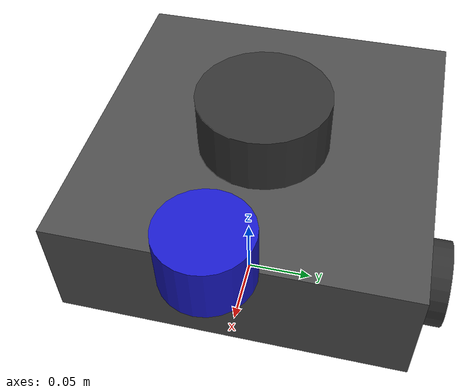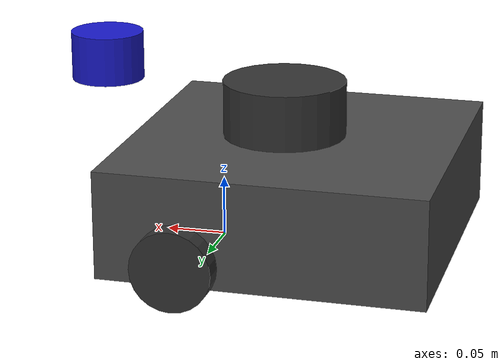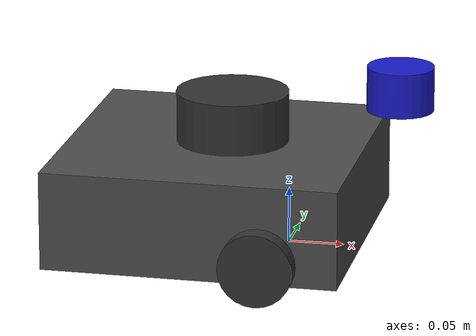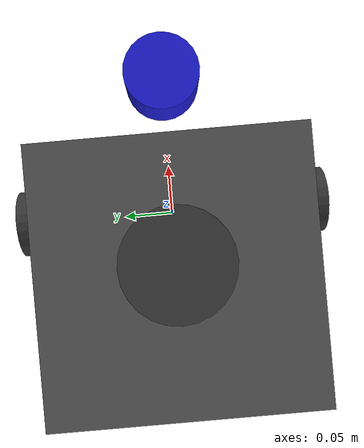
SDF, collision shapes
<?xml version="1.0" ?>
<sdf version="1.5">
  <model name="turtlebot3_waffle_pi">
  <pose>0.0 0.0 0.0 0.0 0.0 0.0</pose>

    <link name="base_footprint"/>

    <link name="base_link">

      <inertial>
        <pose>-0.064 0 0.048 0 0 0</pose>
        <inertia>
          <ixx>4.2111447e-02</ixx>
          <ixy>0</ixy>
          <ixz>0</ixz>
          <iyy>4.2111447e-02</iyy>
          <iyz>0</iyz>
          <izz>7.5254874e-02</izz>
        </inertia>
        <mass>1.3729096e+00</mass>
      </inertial>

      <collision name="base_collision">
        <pose>-0.064 0 0.048 0 0 0</pose>
        <geometry>
          <box>
            <size>0.265 0.265 0.089</size>
          </box>
        </geometry>
      </collision>

      <visual name="base_visual">
        <pose>-0.064 0 0 0 0 0</pose>
        <geometry>
          <mesh>
            <uri>model://turtlebot3_common/meshes/bases/waffle_pi_base.stl</uri>
            <scale>0.001 0.001 0.001</scale>
          </mesh>
        </geometry>
        <material>
          <ambient>0.3 0.3 0.3 1.0</ambient>
          <diffuse>0.3 0.3 0.3 1.0</diffuse>
        </material>
      </visual>
    </link>

    <link name="imu_link">
      <sensor name="tb3_imu" type="imu">
        <always_on>true</always_on>
        <update_rate>100</update_rate>
        <imu>
          <angular_velocity>
            <x>
              <noise type="gaussian">
                <mean>0.0</mean>
                <stddev>2e-4</stddev>
              </noise>
            </x>
            <y>
              <noise type="gaussian">
                <mean>0.0</mean>
                <stddev>2e-4</stddev>
              </noise>
            </y>
            <z>
              <noise type="gaussian">
                <mean>0.0</mean>
                <stddev>2e-4</stddev>
              </noise>
            </z>
          </angular_velocity>
          <linear_acceleration>
            <x>
              <noise type="gaussian">
                <mean>0.0</mean>
                <stddev>1.7e-2</stddev>
              </noise>
            </x>
            <y>
              <noise type="gaussian">
                <mean>0.0</mean>
                <stddev>1.7e-2</stddev>
              </noise>
            </y>
            <z>
              <noise type="gaussian">
                <mean>0.0</mean>
                <stddev>1.7e-2</stddev>
              </noise>
            </z>
          </linear_acceleration>
        </imu>
        <plugin name="turtlebot3_imu" filename="libgazebo_ros_imu_sensor.so">
          <ros>
            <remapping>~/out:=imu</remapping>
          </ros>
        </plugin>
      </sensor>
    </link>

    <link name="base_scan">
      <inertial>
        <pose>-0.052 0 0.111 0 0 0</pose>
        <inertia>
          <ixx>0.001</ixx>
          <ixy>0.000</ixy>
          <ixz>0.000</ixz>
          <iyy>0.001</iyy>
          <iyz>0.000</iyz>
          <izz>0.001</izz>
        </inertia>
        <mass>0.114</mass>
      </inertial>

      <collision name="lidar_sensor_collision">
        <pose>-0.052 0 0.111 0 0 0</pose>
        <geometry>
          <cylinder>
            <radius>0.0508</radius>
            <length>0.055</length>
          </cylinder>
        </geometry>
      </collision>

      <visual name="lidar_sensor_visual">
        <pose>-0.064 0 0.121 0 0 0</pose>
        <geometry>
          <mesh>
            <uri>model://turtlebot3_common/meshes/sensors/lds.stl</uri>
            <scale>0.001 0.001 0.001</scale>
          </mesh>
        </geometry>
        <material>
          <ambient>0.2 0.2 0.2 1.0</ambient>
          <diffuse>0.2 0.2 0.2 1.0</diffuse>
        </material>
      </visual>
    </link>

    <!-- Front LiDAR Link - 360x90, 朝前 -->
    <link name="front_lidar_link">
      <inertial>
        <pose>0.1 0 0.15 0 0 0</pose>
        <inertia>
          <ixx>0.0001</ixx>
          <ixy>0.0</ixy>
          <ixz>0.0</ixz>
          <iyy>0.0001</iyy>
          <iyz>0.0</iyz>
          <izz>0.0001</izz>
        </inertia>
        <mass>0.05</mass>
      </inertial>

      <collision name="front_lidar_collision">
        <pose>0.1 0 0.15 0 0 0</pose>
        <geometry>
          <cylinder>
            <radius>0.03</radius>
            <length>0.04</length>
          </cylinder>
        </geometry>
      </collision>

      <visual name="front_lidar_visual">
        <pose>0.1 0 0.15 0 0 0</pose>
        <geometry>
          <cylinder>
            <radius>0.03</radius>
            <length>0.04</length>
          </cylinder>
        </geometry>
        <material>
          <ambient>0.1 0.1 0.8 1.0</ambient>
          <diffuse>0.1 0.1 0.8 1.0</diffuse>
        </material>
      </visual>

      <sensor name="front_lidar" type="ray">
        <always_on>true</always_on>
        <visualize>false</visualize>
        <pose>0.1 0 0.15 0 -1.5708 0</pose>
        <update_rate>10</update_rate>
        <ray>
          <scan>
            <horizontal>
              <samples>360</samples>
              <resolution>1.0</resolution>
              <min_angle>-3.14159</min_angle>
              <max_angle>3.14159</max_angle>
            </horizontal>
            <vertical>
              <samples>32</samples>
              <min_angle>-1.57</min_angle>
              <max_angle>1.57</max_angle>
            </vertical>
          </scan>
          <range>
            <min>0.1</min>
            <max>30.0</max>
            <resolution>0.01</resolution>
          </range>
          <noise>
            <type>gaussian</type>
            <mean>0.0</mean>
            <stddev>0.001</stddev>
          </noise>
        </ray>
        <plugin name="front_lidar_plugin" filename="libgazebo_ros_ray_sensor.so">
          <ros>
            <remapping>~/out:=front_lidar</remapping>
          </ros>
          <output_type>sensor_msgs/PointCloud2</output_type>
          <frame_name>front_lidar_link</frame_name>
        </plugin>
      </sensor>
    </link>

    <!-- Back LiDAR Link - 360x90, 朝后 -->

    <link name="wheel_left_link">

      <inertial>
        <pose>0.0 0.144 0.023 -1.57 0 0</pose>
        <inertia>
          <ixx>1.8158194e-03</ixx>
          <ixy>-9.3392e-12</ixy>
          <ixz>1.04909e-11</ixz>
          <iyy>3.2922126e-03</iyy>
          <iyz>5.75694e-11</iyz>
          <izz>1.8158194e-03</izz>
        </inertia>
        <mass>2.8498940e-02</mass>
      </inertial>

      <collision name="wheel_left_collision">
        <pose>0.0 0.144 0.023 -1.57 0 0</pose>
        <geometry>
          <cylinder>
            <radius>0.033</radius>
            <length>0.018</length>
          </cylinder>
        </geometry>
        <surface>
          <!-- This friction pamareter don't contain reliable data!! -->
          <friction>
            <ode>
              <mu>100000</mu>
              <mu2>100000</mu2>
              <fdir1>0 0 0</fdir1>
              <slip1>0.0</slip1>
              <slip2>0.0</slip2>
            </ode>
          </friction>
          <contact>
            <ode>
              <soft_cfm>0</soft_cfm>
              <soft_erp>0.2</soft_erp>
              <kp>1e+5</kp>
              <kd>1</kd>
              <max_vel>0.01</max_vel>
              <min_depth>0.001</min_depth>
            </ode>
          </contact>
        </surface>
      </collision>

      <visual name="wheel_left_visual">
        <pose>0.0 0.144 0.023 0 0 0</pose>
        <geometry>
          <mesh>
            <uri>model://turtlebot3_common/meshes/wheels/right_tire.stl</uri>
            <scale>0.001 0.001 0.001</scale>
          </mesh>
        </geometry>
        <material>
          <ambient>0.2 0.2 0.2 1.0</ambient>
          <diffuse>0.2 0.2 0.2 1.0</diffuse>
        </material>
      </visual>
    </link>

    <link name="wheel_right_link">

      <inertial>
        <pose>0.0 -0.144 0.023 -1.57 0 0</pose>
        <inertia>
          <ixx>1.8158194e-03</ixx>
          <ixy>-9.3392e-12</ixy>
          <ixz>1.04909e-11</ixz>
          <iyy>3.2922126e-03</iyy>
          <iyz>5.75694e-11</iyz>
          <izz>1.8158194e-03</izz>
        </inertia>
        <mass>2.8498940e-02</mass>
      </inertial>

      <collision name="wheel_right_collision">
        <pose>0.0 -0.144 0.023 -1.57 0 0</pose>
        <geometry>
          <cylinder>
            <radius>0.033</radius>
            <length>0.018</length>
          </cylinder>
        </geometry>
        <surface>
          <!-- This friction pamareter don't contain reliable data!! -->
          <friction>
            <ode>
              <mu>100000</mu>
              <mu2>100000</mu2>
              <fdir1>0 0 0</fdir1>
              <slip1>0.0</slip1>
              <slip2>0.0</slip2>
            </ode>
          </friction>
          <contact>
            <ode>
              <soft_cfm>0</soft_cfm>
              <soft_erp>0.2</soft_erp>
              <kp>1e+5</kp>
              <kd>1</kd>
              <max_vel>0.01</max_vel>
              <min_depth>0.001</min_depth>
            </ode>
          </contact>
        </surface>
      </collision>

      <visual name="wheel_right_visual">
        <pose>0.0 -0.144 0.023 0 0 0</pose>
        <geometry>
          <mesh>
            <uri>model://turtlebot3_common/meshes/wheels/left_tire.stl</uri>
            <scale>0.001 0.001 0.001</scale>
          </mesh>
        </geometry>
        <material>
          <ambient>0.2 0.2 0.2 1.0</ambient>
          <diffuse>0.2 0.2 0.2 1.0</diffuse>
        </material>
      </visual>
    </link>

    <link name='caster_back_right_link'>
      <pose>-0.177 -0.064 -0.004 -1.57 0 0</pose>
      <inertial>
        <mass>0.001</mass>
        <inertia>
          <ixx>0.00001</ixx>
          <ixy>0.000</ixy>
          <ixz>0.000</ixz>
          <iyy>0.00001</iyy>
          <iyz>0.000</iyz>
          <izz>0.00001</izz>
        </inertia>
      </inertial>
      <collision name='collision'>
        <geometry>
          <sphere>
            <radius>0.005000</radius>
          </sphere>
        </geometry>
        <surface>
          <contact>
            <ode>
              <soft_cfm>0</soft_cfm>
              <soft_erp>0.2</soft_erp>
              <kp>1e+5</kp>
              <kd>1</kd>
              <max_vel>0.01</max_vel>
              <min_depth>0.001</min_depth>
            </ode>
          </contact>
        </surface>
      </collision>
    </link>

    <link name='caster_back_left_link'>
      <pose>-0.177 0.064 -0.004 -1.57 0 0</pose>
      <inertial>
        <mass>0.001</mass>
        <inertia>
          <ixx>0.00001</ixx>
          <ixy>0.000</ixy>
          <ixz>0.000</ixz>
          <iyy>0.00001</iyy>
          <iyz>0.000</iyz>
          <izz>0.00001</izz>
        </inertia>
      </inertial>
      <collision name='collision'>
        <geometry>
          <sphere>
            <radius>0.005000</radius>
          </sphere>
        </geometry>
        <surface>
          <contact>
            <ode>
              <soft_cfm>0</soft_cfm>
              <soft_erp>0.2</soft_erp>
              <kp>1e+5</kp>
              <kd>1</kd>
              <max_vel>0.01</max_vel>
              <min_depth>0.001</min_depth>
            </ode>
          </contact>
        </surface>
      </collision>
    </link>

    <link name="camera_link"/>

    <link name="camera_rgb_optical_frame">
      <inertial>
        <pose>0.076 0.0 0.293 0 0 0</pose>
        <inertia>
          <ixx>0.001</ixx>
          <ixy>0.000</ixy>
          <ixz>0.000</ixz>
          <iyy>0.001</iyy>
          <iyz>0.000</iyz>
          <izz>0.001</izz>
        </inertia>
        <mass>0.035</mass>
      </inertial>

      <pose>0.076 0.0 0.293 0 0 0</pose>
      <sensor name="camera" type="depth">
        <always_on>true</always_on>
        <visualize>true</visualize>
        <update_rate>15</update_rate>
        <camera name="intel_realsense_d455">
          <horizontal_fov>1.9188</horizontal_fov>
          <vertical_fov>1.395</vertical_fov>
          <image>
            <width>640</width>
            <height>480</height>
            <format>R8G8B8</format>
          </image>
          <clip>
            <near>0.02</near>
            <far>300</far>
          </clip>
          <noise>
            <type>gaussian</type>
            <mean>0.0</mean>
            <stddev>0.007</stddev>
          </noise>
        </camera>
        <plugin name="rgbd_plugin" filename="libgazebo_ros_camera.so">
          <ros>
            <argument>/camera/depth/image_raw:=camera/depth/image_rect_raw</argument>
            <argument>/camera/points:=/camera/depth/color/points</argument>
          </ros>

          <!-- Set camera name. If empty, defaults to sensor name (i.e. "sensor_name") -->
          <camera_name>camera</camera_name>

          <!-- Set TF frame name. If empty, defaults to link name (i.e. "link_name") -->
          <frame_name>camera_depth_optical_frame</frame_name>

          <hack_baseline>0.07</hack_baseline>

          <!-- No need to repeat distortion parameters or to set autoDistortion -->

          <min_depth>0.001</min_depth>
        </plugin>
      </sensor>
    </link>

    <!-- ============ Front downward depth camera (face front, pitch down 45 deg) ============ -->
    <link name="camera_front_link">
      <inertial>
        <pose>0.08 0.0 0.3 0 0.61 0</pose>
        <inertia>
          <ixx>0.001</ixx>
          <ixy>0.000</ixy>
          <ixz>0.000</ixz>
          <iyy>0.001</iyy>
          <iyz>0.000</iyz>
          <izz>0.001</izz>
        </inertia>
        <mass>0.035</mass>
      </inertial>

      <!-- pose relative to base_link: face +X (front), pitched 45deg downward -->
      <pose>0.08 0.0 0.3 0 0.61 0</pose>
      <sensor name="camera_front" type="depth">
        <always_on>true</always_on>
        <visualize>false</visualize>
        <update_rate>15</update_rate>
        <camera name="intel_realsense_d455_front">
          <horizontal_fov>1.9188</horizontal_fov>
          <vertical_fov>1.395</vertical_fov>
          <image>
            <width>640</width>
            <height>480</height>
            <format>R8G8B8</format>
          </image>
          <clip>
            <near>0.02</near>
            <far>300</far>
          </clip>
          <noise>
            <type>gaussian</type>
            <mean>0.0</mean>
            <stddev>0.007</stddev>
          </noise>
        </camera>
        <plugin name="rgbd_plugin_front" filename="libgazebo_ros_camera.so">
          <ros>
            <argument>/camera_front/depth/image_raw:=camera_front/depth/image_rect_raw</argument>
            <argument>/camera_front/points:=/camera_front/depth/color/points</argument>
          </ros>
          <camera_name>camera_front</camera_name>
          <frame_name>camera_front_depth_optical_frame</frame_name>
          <hack_baseline>0.07</hack_baseline>
          <min_depth>0.001</min_depth>
        </plugin>
      </sensor>
    </link>

    <!-- ============ Left downward depth camera (face left +Y, pitch down 45 deg) ============ -->
    <link name="camera_left_link">
      <inertial>
        <pose>0.08 0.10 0.3 0 0.785398 1.5708</pose>
        <inertia>
          <ixx>0.001</ixx>
          <ixy>0.000</ixy>
          <ixz>0.000</ixz>
          <iyy>0.001</iyy>
          <iyz>0.000</iyz>
          <izz>0.001</izz>
        </inertia>
        <mass>0.035</mass>
      </inertial>

      <!-- pose relative to base_link: face +Y (left), pitched 45deg downward -->
      <pose>0.08 0.10 0.3 0 0.785398 1.5708</pose>
      <sensor name="camera_left" type="depth">
        <always_on>true</always_on>
        <visualize>false</visualize>
        <update_rate>15</update_rate>
        <camera name="intel_realsense_d455_left">
          <horizontal_fov>1.9188</horizontal_fov>
          <vertical_fov>1.395</vertical_fov>
          <image>
            <width>640</width>
            <height>480</height>
            <format>R8G8B8</format>
          </image>
          <clip>
            <near>0.02</near>
            <far>300</far>
          </clip>
          <noise>
            <type>gaussian</type>
            <mean>0.0</mean>
            <stddev>0.007</stddev>
          </noise>
        </camera>
        <plugin name="rgbd_plugin_left" filename="libgazebo_ros_camera.so">
          <ros>
            <argument>/camera_left/depth/image_raw:=camera_left/depth/image_rect_raw</argument>
            <argument>/camera_left/points:=/camera_left/depth/color/points</argument>
          </ros>
          <camera_name>camera_left</camera_name>
          <frame_name>camera_left_depth_optical_frame</frame_name>
          <hack_baseline>0.07</hack_baseline>
          <min_depth>0.001</min_depth>
        </plugin>
      </sensor>
    </link>

    <!-- ============ Right downward depth camera (face right -Y, pitch down 45 deg) ============ -->
    <link name="camera_right_link">
      <inertial>
        <pose>0.08 -0.10 0.3 0 0.785398 -1.5708</pose>
        <inertia>
          <ixx>0.001</ixx>
          <ixy>0.000</ixy>
          <ixz>0.000</ixz>
          <iyy>0.001</iyy>
          <iyz>0.000</iyz>
          <izz>0.001</izz>
        </inertia>
        <mass>0.035</mass>
      </inertial>

      <!-- pose relative to base_link: face -Y (right), pitched 45deg downward -->
      <pose>0.08 -0.10 0.3 0 0.785398 -1.5708</pose>
      <sensor name="camera_right" type="depth">
        <always_on>true</always_on>
        <visualize>false</visualize>
        <update_rate>15</update_rate>
        <camera name="intel_realsense_d455_right">
          <horizontal_fov>1.9188</horizontal_fov>
          <vertical_fov>1.395</vertical_fov>
          <image>
            <width>640</width>
            <height>480</height>
            <format>R8G8B8</format>
          </image>
          <clip>
            <near>0.02</near>
            <far>300</far>
          </clip>
          <noise>
            <type>gaussian</type>
            <mean>0.0</mean>
            <stddev>0.007</stddev>
          </noise>
        </camera>
        <plugin name="rgbd_plugin_right" filename="libgazebo_ros_camera.so">
          <ros>
            <argument>/camera_right/depth/image_raw:=camera_right/depth/image_rect_raw</argument>
            <argument>/camera_right/points:=/camera_right/depth/color/points</argument>
          </ros>
          <camera_name>camera_right</camera_name>
          <frame_name>camera_right_depth_optical_frame</frame_name>
          <hack_baseline>0.07</hack_baseline>
          <min_depth>0.001</min_depth>
        </plugin>
      </sensor>
    </link>

    <joint name="base_joint" type="fixed">
      <parent>base_footprint</parent>
      <child>base_link</child>
      <pose>0.0 0.0 0.010 0 0 0</pose>
    </joint>

    <joint name="wheel_left_joint" type="revolute">
      <parent>base_link</parent>
      <child>wheel_left_link</child>
      <pose>0.0 0.144 0.023 -1.57 0 0</pose>
      <axis>
        <xyz>0 0 1</xyz>
      </axis>
    </joint>

    <joint name="wheel_right_joint" type="revolute">
      <parent>base_link</parent>
      <child>wheel_right_link</child>
      <pose>0.0 -0.144 0.023 -1.57 0 0</pose>
      <axis>
        <xyz>0 0 1</xyz>
      </axis>
    </joint>

    <joint name='caster_back_right_joint' type='ball'>
      <parent>base_link</parent>
      <child>caster_back_right_link</child>
    </joint>

    <joint name='caster_back_left_joint' type='ball'>
      <parent>base_link</parent>
      <child>caster_back_left_link</child>
    </joint>

    <joint name="imu_joint" type="fixed">
      <parent>base_link</parent>
      <child>imu_link</child>
      <pose>-0.032 0 0.068 0 0 0</pose>
      <axis>
        <xyz>0 0 1</xyz>
      </axis>
    </joint>

    <joint name="lidar_joint" type="fixed">
      <parent>base_link</parent>
      <child>base_scan</child>
      <pose>-0.064 0 0.121 0 0 0</pose>
      <axis>
        <xyz>0 0 1</xyz>
      </axis>
    </joint>

    <joint name="front_lidar_joint" type="fixed">
      <parent>base_link</parent>
      <child>front_lidar_link</child>
      <pose>0.18 0 0.15 0 0 0</pose>
      <axis>
        <xyz>0 0 1</xyz>
      </axis>
    </joint>

    <joint name="camera_joint" type="fixed">
      <parent>base_link</parent>
      <child>camera_link</child>
      <pose>0.073 -0.011 0.084 0 0 0</pose>
      <axis>
        <xyz>0 0 1</xyz>
      </axis>
    </joint>

    <joint name="camera_rgb_joint" type="fixed">
      <parent>camera_link</parent>
      <child>camera_rgb_optical_frame</child>
      <pose>0.003 0.011 0.009 0 0 0</pose>
      <axis>
        <xyz>0 0 1</xyz>
      </axis>
    </joint>

    <joint name="camera_depth_joint" type="fixed">
      <parent>camera_rgb_optical_frame</parent>
      <child>camera_depth_optical_frame</child>
      <pose>0.0 0.0 0.0 0 0 0</pose>
    </joint>

    <!-- Front downward camera joint -->
    <joint name="camera_front_joint" type="fixed">
      <parent>base_link</parent>
      <child>camera_front_link</child>
      <pose>0.08 0.0 0.3 0 0.610 0</pose>
    </joint>

    <!-- Left downward camera joint -->
    <joint name="camera_left_joint" type="fixed">
      <parent>base_link</parent>
      <child>camera_left_link</child>
      <pose>0.08 0.10 0.3 0 0.785398 1.5708</pose>
    </joint>

    <!-- Right downward camera joint -->
    <joint name="camera_right_joint" type="fixed">
      <parent>base_link</parent>
      <child>camera_right_link</child>
      <pose>0.08 -0.10 0.3 0 0.785398 -1.5708</pose>
    </joint>

    <plugin name="turtlebot3_diff_drive" filename="libgazebo_ros_diff_drive.so">

      <ros>
      </ros>

      <update_rate>100</update_rate>

      <!-- wheels -->
      <left_joint>wheel_left_joint</left_joint>
      <right_joint>wheel_right_joint</right_joint>

      <!-- kinematics -->
      <wheel_separation>0.287</wheel_separation>
      <wheel_diameter>0.066</wheel_diameter>

      <!-- limits -->
      <max_wheel_torque>20</max_wheel_torque>
      <max_wheel_acceleration>1.0</max_wheel_acceleration>

      <command_topic>cmd_vel</command_topic>

      <!-- output -->
      <publish_odom>true</publish_odom>
      <publish_odom_tf>true</publish_odom_tf>
      <publish_wheel_tf>false</publish_wheel_tf>

      <odometry_topic>odom</odometry_topic>
      <odometry_frame>odom</odometry_frame>
      <robot_base_frame>base_footprint</robot_base_frame>

    </plugin>

    <plugin name="turtlebot3_joint_state" filename="libgazebo_ros_joint_state_publisher.so">
      <ros>
        <remapping>~/out:=joint_states</remapping>
      </ros>
      <update_rate>30</update_rate>
      <joint_name>wheel_left_joint</joint_name>
      <joint_name>wheel_right_joint</joint_name>
    </plugin>

  </model>
</sdf>
